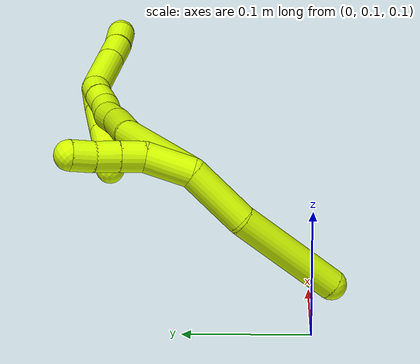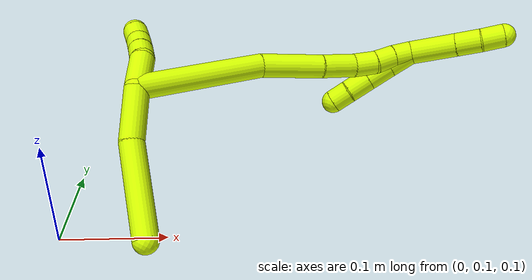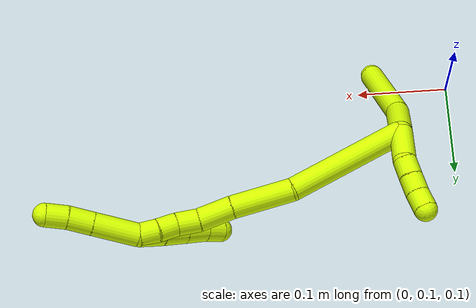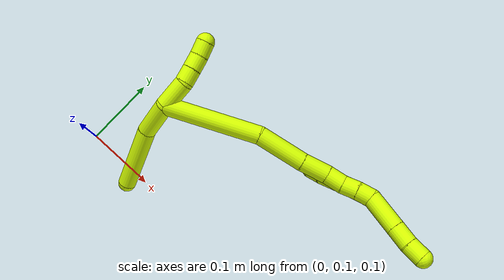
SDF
<sdf version="1.7">
 <world name="default">
  <model name="15">
   <static>0</static>
   <link name="15">
    <collision name="collision-cylinder-e_1_2_8">
     <pose>0.011102 0.003542 -0.024397 -2.99741 0.423152 -2.49291</pose>
     <geometry><cylinder><radius>0.0125</radius><length>0.054074</length></cylinder></geometry>
     <surface>
      <friction><ode><mu>1.16</mu><mu2>1.16</mu2><slip1>0</slip1><slip2>0</slip2></ode></friction>
      <contact><ode><kp>1e+06</kp><kd>1</kd><max_vel>0</max_vel><min_depth>0.001</min_depth></ode></contact>
     </surface>
    </collision>
    <visual name="visual-cylinder-e_1_2_8">
     <pose>0.011102 0.003542 -0.024397 -2.99741 0.423152 -2.49291</pose>
     <geometry><cylinder><radius>0.0125</radius><length>0.054074</length></cylinder></geometry>
     <material><ambient>0.835294 1 0 1</ambient></material>
    </visual>
    <collision name="collision-cylinder-e_2_8_6">
     <pose>0.052039 0.014713 -0.085565 -2.93703 0.671325 -2.56931</pose>
     <geometry><cylinder><radius>0.0125</radius><length>0.095926</length></cylinder></geometry>
     <surface>
      <friction><ode><mu>1.16</mu><mu2>1.16</mu2><slip1>0</slip1><slip2>0</slip2></ode></friction>
      <contact><ode><kp>1e+06</kp><kd>1</kd><max_vel>0</max_vel><min_depth>0.001</min_depth></ode></contact>
     </surface>
    </collision>
    <visual name="visual-cylinder-e_2_8_6">
     <pose>0.052039 0.014713 -0.085565 -2.93703 0.671325 -2.56931</pose>
     <geometry><cylinder><radius>0.0125</radius><length>0.095926</length></cylinder></geometry>
     <material><ambient>0.835294 1 0 1</ambient></material>
    </visual>
    <collision name="collision-cylinder-e_1_2_9">
     <pose>-0.011563 0.005063 0.015359 -0.318419 -0.620698 0.102902</pose>
     <geometry><cylinder><radius>0.0125</radius><length>0.039761</length></cylinder></geometry>
     <surface>
      <friction><ode><mu>1.16</mu><mu2>1.16</mu2><slip1>0</slip1><slip2>0</slip2></ode></friction>
      <contact><ode><kp>1e+06</kp><kd>1</kd><max_vel>0</max_vel><min_depth>0.001</min_depth></ode></contact>
     </surface>
    </collision>
    <visual name="visual-cylinder-e_1_2_9">
     <pose>-0.011563 0.005063 0.015359 -0.318419 -0.620698 0.102902</pose>
     <geometry><cylinder><radius>0.0125</radius><length>0.039761</length></cylinder></geometry>
     <material><ambient>0.835294 1 0 1</ambient></material>
    </visual>
    <collision name="collision-cylinder-e_2_9_10">
     <pose>-0.031038 0.013698 0.035861 -0.607076 -0.901389 0.300849</pose>
     <geometry><cylinder><radius>0.0125</radius><length>0.02018</length></cylinder></geometry>
     <surface>
      <friction><ode><mu>1.16</mu><mu2>1.16</mu2><slip1>0</slip1><slip2>0</slip2></ode></friction>
      <contact><ode><kp>1e+06</kp><kd>1</kd><max_vel>0</max_vel><min_depth>0.001</min_depth></ode></contact>
     </surface>
    </collision>
    <visual name="visual-cylinder-e_2_9_10">
     <pose>-0.031038 0.013698 0.035861 -0.607076 -0.901389 0.300849</pose>
     <geometry><cylinder><radius>0.0125</radius><length>0.02018</length></cylinder></geometry>
     <material><ambient>0.835294 1 0 1</ambient></material>
    </visual>
    <collision name="collision-cylinder-e_3_10_11">
     <pose>-0.046955 0.020868 0.045802 -0.643497 -0.92778 0.330492</pose>
     <geometry><cylinder><radius>0.0125</radius><length>0.020006</length></cylinder></geometry>
     <surface>
      <friction><ode><mu>1.16</mu><mu2>1.16</mu2><slip1>0</slip1><slip2>0</slip2></ode></friction>
      <contact><ode><kp>1e+06</kp><kd>1</kd><max_vel>0</max_vel><min_depth>0.001</min_depth></ode></contact>
     </surface>
    </collision>
    <visual name="visual-cylinder-e_3_10_11">
     <pose>-0.046955 0.020868 0.045802 -0.643497 -0.92778 0.330492</pose>
     <geometry><cylinder><radius>0.0125</radius><length>0.020006</length></cylinder></geometry>
     <material><ambient>0.835294 1 0 1</ambient></material>
    </visual>
    <collision name="collision-cylinder-e_4_11_5">
     <pose>-0.063237 0.026938 0.055692 -0.451918 -0.970972 0.241397</pose>
     <geometry><cylinder><radius>0.0125</radius><length>0.020053</length></cylinder></geometry>
     <surface>
      <friction><ode><mu>1.16</mu><mu2>1.16</mu2><slip1>0</slip1><slip2>0</slip2></ode></friction>
      <contact><ode><kp>1e+06</kp><kd>1</kd><max_vel>0</max_vel><min_depth>0.001</min_depth></ode></contact>
     </surface>
    </collision>
    <visual name="visual-cylinder-e_4_11_5">
     <pose>-0.063237 0.026938 0.055692 -0.451918 -0.970972 0.241397</pose>
     <geometry><cylinder><radius>0.0125</radius><length>0.020053</length></cylinder></geometry>
     <material><ambient>0.835294 1 0 1</ambient></material>
    </visual>
    <collision name="collision-cylinder-e_1_2_12">
     <pose>0.028743 0.040262 0.042934 -0.753298 0.454272 -0.182328</pose>
     <geometry><cylinder><radius>0.0125</radius><length>0.131004</length></cylinder></geometry>
     <surface>
      <friction><ode><mu>1.16</mu><mu2>1.16</mu2><slip1>0</slip1><slip2>0</slip2></ode></friction>
      <contact><ode><kp>1e+06</kp><kd>1</kd><max_vel>0</max_vel><min_depth>0.001</min_depth></ode></contact>
     </surface>
    </collision>
    <visual name="visual-cylinder-e_1_2_12">
     <pose>0.028743 0.040262 0.042934 -0.753298 0.454272 -0.182328</pose>
     <geometry><cylinder><radius>0.0125</radius><length>0.131004</length></cylinder></geometry>
     <material><ambient>0.835294 1 0 1</ambient></material>
    </visual>
    <collision name="collision-cylinder-e_2_12_13">
     <pose>0.078617 0.099845 0.102284 -0.866468 0.694848 -0.331903</pose>
     <geometry><cylinder><radius>0.0125</radius><length>0.066009</length></cylinder></geometry>
     <surface>
      <friction><ode><mu>1.16</mu><mu2>1.16</mu2><slip1>0</slip1><slip2>0</slip2></ode></friction>
      <contact><ode><kp>1e+06</kp><kd>1</kd><max_vel>0</max_vel><min_depth>0.001</min_depth></ode></contact>
     </surface>
    </collision>
    <visual name="visual-cylinder-e_2_12_13">
     <pose>0.078617 0.099845 0.102284 -0.866468 0.694848 -0.331903</pose>
     <geometry><cylinder><radius>0.0125</radius><length>0.066009</length></cylinder></geometry>
     <material><ambient>0.835294 1 0 1</ambient></material>
    </visual>
    <collision name="collision-cylinder-e_3_13_14">
     <pose>0.110276 0.130707 0.128748 -0.854516 0.60255 -0.281092</pose>
     <geometry><cylinder><radius>0.0125</radius><length>0.037149</length></cylinder></geometry>
     <surface>
      <friction><ode><mu>1.16</mu><mu2>1.16</mu2><slip1>0</slip1><slip2>0</slip2></ode></friction>
      <contact><ode><kp>1e+06</kp><kd>1</kd><max_vel>0</max_vel><min_depth>0.001</min_depth></ode></contact>
     </surface>
    </collision>
    <visual name="visual-cylinder-e_3_13_14">
     <pose>0.110276 0.130707 0.128748 -0.854516 0.60255 -0.281092</pose>
     <geometry><cylinder><radius>0.0125</radius><length>0.037149</length></cylinder></geometry>
     <material><ambient>0.835294 1 0 1</ambient></material>
    </visual>
    <collision name="collision-cylinder-e_4_14_15">
     <pose>0.128977 0.147553 0.146091 -0.628703 0.73627 -0.249517</pose>
     <geometry><cylinder><radius>0.0125</radius><length>0.024344</length></cylinder></geometry>
     <surface>
      <friction><ode><mu>1.16</mu><mu2>1.16</mu2><slip1>0</slip1><slip2>0</slip2></ode></friction>
      <contact><ode><kp>1e+06</kp><kd>1</kd><max_vel>0</max_vel><min_depth>0.001</min_depth></ode></contact>
     </surface>
    </collision>
    <visual name="visual-cylinder-e_4_14_15">
     <pose>0.128977 0.147553 0.146091 -0.628703 0.73627 -0.249517</pose>
     <geometry><cylinder><radius>0.0125</radius><length>0.024344</length></cylinder></geometry>
     <material><ambient>0.835294 1 0 1</ambient></material>
    </visual>
    <collision name="collision-cylinder-e_5_15_16">
     <pose>0.142694 0.157237 0.161109 -0.515826 0.558124 -0.150884</pose>
     <geometry><cylinder><radius>0.0125</radius><length>0.020936</length></cylinder></geometry>
     <surface>
      <friction><ode><mu>1.16</mu><mu2>1.16</mu2><slip1>0</slip1><slip2>0</slip2></ode></friction>
      <contact><ode><kp>1e+06</kp><kd>1</kd><max_vel>0</max_vel><min_depth>0.001</min_depth></ode></contact>
     </surface>
    </collision>
    <visual name="visual-cylinder-e_5_15_16">
     <pose>0.142694 0.157237 0.161109 -0.515826 0.558124 -0.150884</pose>
     <geometry><cylinder><radius>0.0125</radius><length>0.020936</length></cylinder></geometry>
     <material><ambient>0.835294 1 0 1</ambient></material>
    </visual>
    <collision name="collision-cylinder-e_6_16_1">
     <pose>0.15454 0.165958 0.175697 -0.564009 0.659936 -0.197808</pose>
     <geometry><cylinder><radius>0.0125</radius><length>0.020558</length></cylinder></geometry>
     <surface>
      <friction><ode><mu>1.16</mu><mu2>1.16</mu2><slip1>0</slip1><slip2>0</slip2></ode></friction>
      <contact><ode><kp>1e+06</kp><kd>1</kd><max_vel>0</max_vel><min_depth>0.001</min_depth></ode></contact>
     </surface>
    </collision>
    <visual name="visual-cylinder-e_6_16_1">
     <pose>0.15454 0.165958 0.175697 -0.564009 0.659936 -0.197808</pose>
     <geometry><cylinder><radius>0.0125</radius><length>0.020558</length></cylinder></geometry>
     <material><ambient>0.835294 1 0 1</ambient></material>
    </visual>
    <collision name="collision-cylinder-e_1_1_17">
     <pose>0.182233 0.171877 0.194924 -0.126924 1.0432 -0.073007</pose>
     <geometry><cylinder><radius>0.0125</radius><length>0.049516</length></cylinder></geometry>
     <surface>
      <friction><ode><mu>1.16</mu><mu2>1.16</mu2><slip1>0</slip1><slip2>0</slip2></ode></friction>
      <contact><ode><kp>1e+06</kp><kd>1</kd><max_vel>0</max_vel><min_depth>0.001</min_depth></ode></contact>
     </surface>
    </collision>
    <visual name="visual-cylinder-e_1_1_17">
     <pose>0.182233 0.171877 0.194924 -0.126924 1.0432 -0.073007</pose>
     <geometry><cylinder><radius>0.0125</radius><length>0.049516</length></cylinder></geometry>
     <material><ambient>0.835294 1 0 1</ambient></material>
    </visual>
    <collision name="collision-cylinder-e_2_17_18">
     <pose>0.215156 0.174242 0.214003 -0.116567 1.04059 -0.066838</pose>
     <geometry><cylinder><radius>0.0125</radius><length>0.026734</length></cylinder></geometry>
     <surface>
      <friction><ode><mu>1.16</mu><mu2>1.16</mu2><slip1>0</slip1><slip2>0</slip2></ode></friction>
      <contact><ode><kp>1e+06</kp><kd>1</kd><max_vel>0</max_vel><min_depth>0.001</min_depth></ode></contact>
     </surface>
    </collision>
    <visual name="visual-cylinder-e_2_17_18">
     <pose>0.215156 0.174242 0.214003 -0.116567 1.04059 -0.066838</pose>
     <geometry><cylinder><radius>0.0125</radius><length>0.026734</length></cylinder></geometry>
     <material><ambient>0.835294 1 0 1</ambient></material>
    </visual>
    <collision name="collision-cylinder-e_3_18_4">
     <pose>0.236203 0.176835 0.227588 -0.257237 0.929366 -0.129486</pose>
     <geometry><cylinder><radius>0.0125</radius><length>0.02375</length></cylinder></geometry>
     <surface>
      <friction><ode><mu>1.16</mu><mu2>1.16</mu2><slip1>0</slip1><slip2>0</slip2></ode></friction>
      <contact><ode><kp>1e+06</kp><kd>1</kd><max_vel>0</max_vel><min_depth>0.001</min_depth></ode></contact>
     </surface>
    </collision>
    <visual name="visual-cylinder-e_3_18_4">
     <pose>0.236203 0.176835 0.227588 -0.257237 0.929366 -0.129486</pose>
     <geometry><cylinder><radius>0.0125</radius><length>0.02375</length></cylinder></geometry>
     <material><ambient>0.835294 1 0 1</ambient></material>
    </visual>
    <collision name="collision-cylinder-e_1_1_19">
     <pose>0.153019 0.169463 0.171073 3.06887 -0.596683 -2.90611</pose>
     <geometry><cylinder><radius>0.0125</radius><length>0.027845</length></cylinder></geometry>
     <surface>
      <friction><ode><mu>1.16</mu><mu2>1.16</mu2><slip1>0</slip1><slip2>0</slip2></ode></friction>
      <contact><ode><kp>1e+06</kp><kd>1</kd><max_vel>0</max_vel><min_depth>0.001</min_depth></ode></contact>
     </surface>
    </collision>
    <visual name="visual-cylinder-e_1_1_19">
     <pose>0.153019 0.169463 0.171073 3.06887 -0.596683 -2.90611</pose>
     <geometry><cylinder><radius>0.0125</radius><length>0.027845</length></cylinder></geometry>
     <material><ambient>0.835294 1 0 1</ambient></material>
    </visual>
    <collision name="collision-cylinder-e_2_19_20">
     <pose>0.138027 0.16745 0.14827 3.03806 -0.562169 -2.78646</pose>
     <geometry><cylinder><radius>0.0125</radius><length>0.026896</length></cylinder></geometry>
     <surface>
      <friction><ode><mu>1.16</mu><mu2>1.16</mu2><slip1>0</slip1><slip2>0</slip2></ode></friction>
      <contact><ode><kp>1e+06</kp><kd>1</kd><max_vel>0</max_vel><min_depth>0.001</min_depth></ode></contact>
     </surface>
    </collision>
    <visual name="visual-cylinder-e_2_19_20">
     <pose>0.138027 0.16745 0.14827 3.03806 -0.562169 -2.78646</pose>
     <geometry><cylinder><radius>0.0125</radius><length>0.026896</length></cylinder></geometry>
     <material><ambient>0.835294 1 0 1</ambient></material>
    </visual>
    <collision name="collision-cylinder-e_3_20_21">
     <pose>0.124276 0.165179 0.126375 3.03845 -0.554377 -2.78267</pose>
     <geometry><cylinder><radius>0.0125</radius><length>0.025012</length></cylinder></geometry>
     <surface>
      <friction><ode><mu>1.16</mu><mu2>1.16</mu2><slip1>0</slip1><slip2>0</slip2></ode></friction>
      <contact><ode><kp>1e+06</kp><kd>1</kd><max_vel>0</max_vel><min_depth>0.001</min_depth></ode></contact>
     </surface>
    </collision>
    <visual name="visual-cylinder-e_3_20_21">
     <pose>0.124276 0.165179 0.126375 3.03845 -0.554377 -2.78267</pose>
     <geometry><cylinder><radius>0.0125</radius><length>0.025012</length></cylinder></geometry>
     <material><ambient>0.835294 1 0 1</ambient></material>
    </visual>
    <collision name="collision-cylinder-e_4_21_3">
     <pose>0.111863 0.164136 0.107523 -3.13539 -0.613663 3.12202</pose>
     <geometry><cylinder><radius>0.0125</radius><length>0.020246</length></cylinder></geometry>
     <surface>
      <friction><ode><mu>1.16</mu><mu2>1.16</mu2><slip1>0</slip1><slip2>0</slip2></ode></friction>
      <contact><ode><kp>1e+06</kp><kd>1</kd><max_vel>0</max_vel><min_depth>0.001</min_depth></ode></contact>
     </surface>
    </collision>
    <visual name="visual-cylinder-e_4_21_3">
     <pose>0.111863 0.164136 0.107523 -3.13539 -0.613663 3.12202</pose>
     <geometry><cylinder><radius>0.0125</radius><length>0.020246</length></cylinder></geometry>
     <material><ambient>0.835294 1 0 1</ambient></material>
    </visual>
    <collision name="collision-sphere-3">
     <pose>0.106033 0.164187 0.099247 0 -0 0</pose>
     <geometry><sphere><radius>0.0125</radius></sphere></geometry>
     <surface>
      <friction><ode><mu>1.16</mu><mu2>1.16</mu2><slip1>0</slip1><slip2>0</slip2></ode></friction>
      <contact><ode><kp>1e+06</kp><kd>1</kd><max_vel>0</max_vel><min_depth>0.001</min_depth></ode></contact>
     </surface>
    </collision>
    <visual name="visual-sphere-3">
     <pose>0.106033 0.164187 0.099247 0 -0 0</pose>
     <geometry><sphere><radius>0.0125</radius></sphere></geometry>
     <material><ambient>0.835294 1 0 1</ambient></material>
    </visual>
    <collision name="collision-sphere-21">
     <pose>0.117692 0.164085 0.115799 0 -0 0</pose>
     <geometry><sphere><radius>0.0125</radius></sphere></geometry>
     <surface>
      <friction><ode><mu>1.16</mu><mu2>1.16</mu2><slip1>0</slip1><slip2>0</slip2></ode></friction>
      <contact><ode><kp>1e+06</kp><kd>1</kd><max_vel>0</max_vel><min_depth>0.001</min_depth></ode></contact>
     </surface>
    </collision>
    <visual name="visual-sphere-21">
     <pose>0.117692 0.164085 0.115799 0 -0 0</pose>
     <geometry><sphere><radius>0.0125</radius></sphere></geometry>
     <material><ambient>0.835294 1 0 1</ambient></material>
    </visual>
    <collision name="collision-sphere-20">
     <pose>0.130859 0.166274 0.136952 0 -0 0</pose>
     <geometry><sphere><radius>0.0125</radius></sphere></geometry>
     <surface>
      <friction><ode><mu>1.16</mu><mu2>1.16</mu2><slip1>0</slip1><slip2>0</slip2></ode></friction>
      <contact><ode><kp>1e+06</kp><kd>1</kd><max_vel>0</max_vel><min_depth>0.001</min_depth></ode></contact>
     </surface>
    </collision>
    <visual name="visual-sphere-20">
     <pose>0.130859 0.166274 0.136952 0 -0 0</pose>
     <geometry><sphere><radius>0.0125</radius></sphere></geometry>
     <material><ambient>0.835294 1 0 1</ambient></material>
    </visual>
    <collision name="collision-sphere-19">
     <pose>0.145196 0.168626 0.159587 0 -0 0</pose>
     <geometry><sphere><radius>0.0125</radius></sphere></geometry>
     <surface>
      <friction><ode><mu>1.16</mu><mu2>1.16</mu2><slip1>0</slip1><slip2>0</slip2></ode></friction>
      <contact><ode><kp>1e+06</kp><kd>1</kd><max_vel>0</max_vel><min_depth>0.001</min_depth></ode></contact>
     </surface>
    </collision>
    <visual name="visual-sphere-19">
     <pose>0.145196 0.168626 0.159587 0 -0 0</pose>
     <geometry><sphere><radius>0.0125</radius></sphere></geometry>
     <material><ambient>0.835294 1 0 1</ambient></material>
    </visual>
    <collision name="collision-sphere-11">
     <pose>-0.05496 0.024467 0.0506 0 -0 0</pose>
     <geometry><sphere><radius>0.0125</radius></sphere></geometry>
     <surface>
      <friction><ode><mu>1.16</mu><mu2>1.16</mu2><slip1>0</slip1><slip2>0</slip2></ode></friction>
      <contact><ode><kp>1e+06</kp><kd>1</kd><max_vel>0</max_vel><min_depth>0.001</min_depth></ode></contact>
     </surface>
    </collision>
    <visual name="visual-sphere-11">
     <pose>-0.05496 0.024467 0.0506 0 -0 0</pose>
     <geometry><sphere><radius>0.0125</radius></sphere></geometry>
     <material><ambient>0.835294 1 0 1</ambient></material>
    </visual>
    <collision name="collision-sphere-10">
     <pose>-0.03895 0.017269 0.041003 0 -0 0</pose>
     <geometry><sphere><radius>0.0125</radius></sphere></geometry>
     <surface>
      <friction><ode><mu>1.16</mu><mu2>1.16</mu2><slip1>0</slip1><slip2>0</slip2></ode></friction>
      <contact><ode><kp>1e+06</kp><kd>1</kd><max_vel>0</max_vel><min_depth>0.001</min_depth></ode></contact>
     </surface>
    </collision>
    <visual name="visual-sphere-10">
     <pose>-0.03895 0.017269 0.041003 0 -0 0</pose>
     <geometry><sphere><radius>0.0125</radius></sphere></geometry>
     <material><ambient>0.835294 1 0 1</ambient></material>
    </visual>
    <collision name="collision-sphere-6">
     <pose>0.081873 0.022342 -0.122337 0 -0 0</pose>
     <geometry><sphere><radius>0.0125</radius></sphere></geometry>
     <surface>
      <friction><ode><mu>1.16</mu><mu2>1.16</mu2><slip1>0</slip1><slip2>0</slip2></ode></friction>
      <contact><ode><kp>1e+06</kp><kd>1</kd><max_vel>0</max_vel><min_depth>0.001</min_depth></ode></contact>
     </surface>
    </collision>
    <visual name="visual-sphere-6">
     <pose>0.081873 0.022342 -0.122337 0 -0 0</pose>
     <geometry><sphere><radius>0.0125</radius></sphere></geometry>
     <material><ambient>0.835294 1 0 1</ambient></material>
    </visual>
    <collision name="collision-sphere-9">
     <pose>-0.023125 0.010126 0.030719 0 -0 0</pose>
     <geometry><sphere><radius>0.0125</radius></sphere></geometry>
     <surface>
      <friction><ode><mu>1.16</mu><mu2>1.16</mu2><slip1>0</slip1><slip2>0</slip2></ode></friction>
      <contact><ode><kp>1e+06</kp><kd>1</kd><max_vel>0</max_vel><min_depth>0.001</min_depth></ode></contact>
     </surface>
    </collision>
    <visual name="visual-sphere-9">
     <pose>-0.023125 0.010126 0.030719 0 -0 0</pose>
     <geometry><sphere><radius>0.0125</radius></sphere></geometry>
     <material><ambient>0.835294 1 0 1</ambient></material>
    </visual>
    <collision name="collision-sphere-2">
     <geometry><sphere><radius>0.0125</radius></sphere></geometry>
     <surface>
      <friction><ode><mu>1.16</mu><mu2>1.16</mu2><slip1>0</slip1><slip2>0</slip2></ode></friction>
      <contact><ode><kp>1e+06</kp><kd>1</kd><max_vel>0</max_vel><min_depth>0.001</min_depth></ode></contact>
     </surface>
    </collision>
    <visual name="visual-sphere-2">
     <geometry><sphere><radius>0.0125</radius></sphere></geometry>
     <material><ambient>0.835294 1 0 1</ambient></material>
    </visual>
    <collision name="collision-sphere-8">
     <pose>0.022205 0.007084 -0.048793 0 -0 0</pose>
     <geometry><sphere><radius>0.0125</radius></sphere></geometry>
     <surface>
      <friction><ode><mu>1.16</mu><mu2>1.16</mu2><slip1>0</slip1><slip2>0</slip2></ode></friction>
      <contact><ode><kp>1e+06</kp><kd>1</kd><max_vel>0</max_vel><min_depth>0.001</min_depth></ode></contact>
     </surface>
    </collision>
    <visual name="visual-sphere-8">
     <pose>0.022205 0.007084 -0.048793 0 -0 0</pose>
     <geometry><sphere><radius>0.0125</radius></sphere></geometry>
     <material><ambient>0.835294 1 0 1</ambient></material>
    </visual>
    <collision name="collision-sphere-5">
     <pose>-0.071513 0.02941 0.060784 0 -0 0</pose>
     <geometry><sphere><radius>0.0125</radius></sphere></geometry>
     <surface>
      <friction><ode><mu>1.16</mu><mu2>1.16</mu2><slip1>0</slip1><slip2>0</slip2></ode></friction>
      <contact><ode><kp>1e+06</kp><kd>1</kd><max_vel>0</max_vel><min_depth>0.001</min_depth></ode></contact>
     </surface>
    </collision>
    <visual name="visual-sphere-5">
     <pose>-0.071513 0.02941 0.060784 0 -0 0</pose>
     <geometry><sphere><radius>0.0125</radius></sphere></geometry>
     <material><ambient>0.835294 1 0 1</ambient></material>
    </visual>
    <collision name="collision-sphere-12">
     <pose>0.057486 0.080525 0.085868 0 -0 0</pose>
     <geometry><sphere><radius>0.0125</radius></sphere></geometry>
     <surface>
      <friction><ode><mu>1.16</mu><mu2>1.16</mu2><slip1>0</slip1><slip2>0</slip2></ode></friction>
      <contact><ode><kp>1e+06</kp><kd>1</kd><max_vel>0</max_vel><min_depth>0.001</min_depth></ode></contact>
     </surface>
    </collision>
    <visual name="visual-sphere-12">
     <pose>0.057486 0.080525 0.085868 0 -0 0</pose>
     <geometry><sphere><radius>0.0125</radius></sphere></geometry>
     <material><ambient>0.835294 1 0 1</ambient></material>
    </visual>
    <collision name="collision-sphere-13">
     <pose>0.099749 0.119164 0.1187 0 -0 0</pose>
     <geometry><sphere><radius>0.0125</radius></sphere></geometry>
     <surface>
      <friction><ode><mu>1.16</mu><mu2>1.16</mu2><slip1>0</slip1><slip2>0</slip2></ode></friction>
      <contact><ode><kp>1e+06</kp><kd>1</kd><max_vel>0</max_vel><min_depth>0.001</min_depth></ode></contact>
     </surface>
    </collision>
    <visual name="visual-sphere-13">
     <pose>0.099749 0.119164 0.1187 0 -0 0</pose>
     <geometry><sphere><radius>0.0125</radius></sphere></geometry>
     <material><ambient>0.835294 1 0 1</ambient></material>
    </visual>
    <collision name="collision-sphere-14">
     <pose>0.120803 0.142249 0.138796 0 -0 0</pose>
     <geometry><sphere><radius>0.0125</radius></sphere></geometry>
     <surface>
      <friction><ode><mu>1.16</mu><mu2>1.16</mu2><slip1>0</slip1><slip2>0</slip2></ode></friction>
      <contact><ode><kp>1e+06</kp><kd>1</kd><max_vel>0</max_vel><min_depth>0.001</min_depth></ode></contact>
     </surface>
    </collision>
    <visual name="visual-sphere-14">
     <pose>0.120803 0.142249 0.138796 0 -0 0</pose>
     <geometry><sphere><radius>0.0125</radius></sphere></geometry>
     <material><ambient>0.835294 1 0 1</ambient></material>
    </visual>
    <collision name="collision-sphere-15">
     <pose>0.13715 0.152857 0.153385 0 -0 0</pose>
     <geometry><sphere><radius>0.0125</radius></sphere></geometry>
     <surface>
      <friction><ode><mu>1.16</mu><mu2>1.16</mu2><slip1>0</slip1><slip2>0</slip2></ode></friction>
      <contact><ode><kp>1e+06</kp><kd>1</kd><max_vel>0</max_vel><min_depth>0.001</min_depth></ode></contact>
     </surface>
    </collision>
    <visual name="visual-sphere-15">
     <pose>0.13715 0.152857 0.153385 0 -0 0</pose>
     <geometry><sphere><radius>0.0125</radius></sphere></geometry>
     <material><ambient>0.835294 1 0 1</ambient></material>
    </visual>
    <collision name="collision-sphere-16">
     <pose>0.148238 0.161617 0.168833 0 -0 0</pose>
     <geometry><sphere><radius>0.0125</radius></sphere></geometry>
     <surface>
      <friction><ode><mu>1.16</mu><mu2>1.16</mu2><slip1>0</slip1><slip2>0</slip2></ode></friction>
      <contact><ode><kp>1e+06</kp><kd>1</kd><max_vel>0</max_vel><min_depth>0.001</min_depth></ode></contact>
     </surface>
    </collision>
    <visual name="visual-sphere-16">
     <pose>0.148238 0.161617 0.168833 0 -0 0</pose>
     <geometry><sphere><radius>0.0125</radius></sphere></geometry>
     <material><ambient>0.835294 1 0 1</ambient></material>
    </visual>
    <collision name="collision-sphere-1">
     <pose>0.160842 0.1703 0.18256 0 -0 0</pose>
     <geometry><sphere><radius>0.0125</radius></sphere></geometry>
     <surface>
      <friction><ode><mu>1.16</mu><mu2>1.16</mu2><slip1>0</slip1><slip2>0</slip2></ode></friction>
      <contact><ode><kp>1e+06</kp><kd>1</kd><max_vel>0</max_vel><min_depth>0.001</min_depth></ode></contact>
     </surface>
    </collision>
    <visual name="visual-sphere-1">
     <pose>0.160842 0.1703 0.18256 0 -0 0</pose>
     <geometry><sphere><radius>0.0125</radius></sphere></geometry>
     <material><ambient>0.835294 1 0 1</ambient></material>
    </visual>
    <collision name="collision-sphere-18">
     <pose>0.226688 0.175028 0.220716 0 -0 0</pose>
     <geometry><sphere><radius>0.0125</radius></sphere></geometry>
     <surface>
      <friction><ode><mu>1.16</mu><mu2>1.16</mu2><slip1>0</slip1><slip2>0</slip2></ode></friction>
      <contact><ode><kp>1e+06</kp><kd>1</kd><max_vel>0</max_vel><min_depth>0.001</min_depth></ode></contact>
     </surface>
    </collision>
    <visual name="visual-sphere-18">
     <pose>0.226688 0.175028 0.220716 0 -0 0</pose>
     <geometry><sphere><radius>0.0125</radius></sphere></geometry>
     <material><ambient>0.835294 1 0 1</ambient></material>
    </visual>
    <collision name="collision-sphere-17">
     <pose>0.203625 0.173455 0.207289 0 -0 0</pose>
     <geometry><sphere><radius>0.0125</radius></sphere></geometry>
     <surface>
      <friction><ode><mu>1.16</mu><mu2>1.16</mu2><slip1>0</slip1><slip2>0</slip2></ode></friction>
      <contact><ode><kp>1e+06</kp><kd>1</kd><max_vel>0</max_vel><min_depth>0.001</min_depth></ode></contact>
     </surface>
    </collision>
    <visual name="visual-sphere-17">
     <pose>0.203625 0.173455 0.207289 0 -0 0</pose>
     <geometry><sphere><radius>0.0125</radius></sphere></geometry>
     <material><ambient>0.835294 1 0 1</ambient></material>
    </visual>
    <collision name="collision-sphere-4">
     <pose>0.245717 0.178643 0.23446 0 -0 0</pose>
     <geometry><sphere><radius>0.0125</radius></sphere></geometry>
     <surface>
      <friction><ode><mu>1.16</mu><mu2>1.16</mu2><slip1>0</slip1><slip2>0</slip2></ode></friction>
      <contact><ode><kp>1e+06</kp><kd>1</kd><max_vel>0</max_vel><min_depth>0.001</min_depth></ode></contact>
     </surface>
    </collision>
    <visual name="visual-sphere-4">
     <pose>0.245717 0.178643 0.23446 0 -0 0</pose>
     <geometry><sphere><radius>0.0125</radius></sphere></geometry>
     <material><ambient>0.835294 1 0 1</ambient></material>
    </visual>
    <inertial>
     <pose>0.077848 0.085468 0.075211 0 -0 0</pose>
     <mass>0.75</mass>
     <inertia>
      <ixx>7.8e-05</ixx>
      <ixy>0</ixy>
      <ixz>0</ixz>
      <iyy>0.000231</iyy>
      <iyz>0</iyz>
      <izz>-0.000315</izz>
     </inertia>
    </inertial>
   </link>
   <pose>0.06887 0.193135 0.20895 -0.855104 0.011279 -0.67719</pose>
  </model>
 </world>
</sdf>
